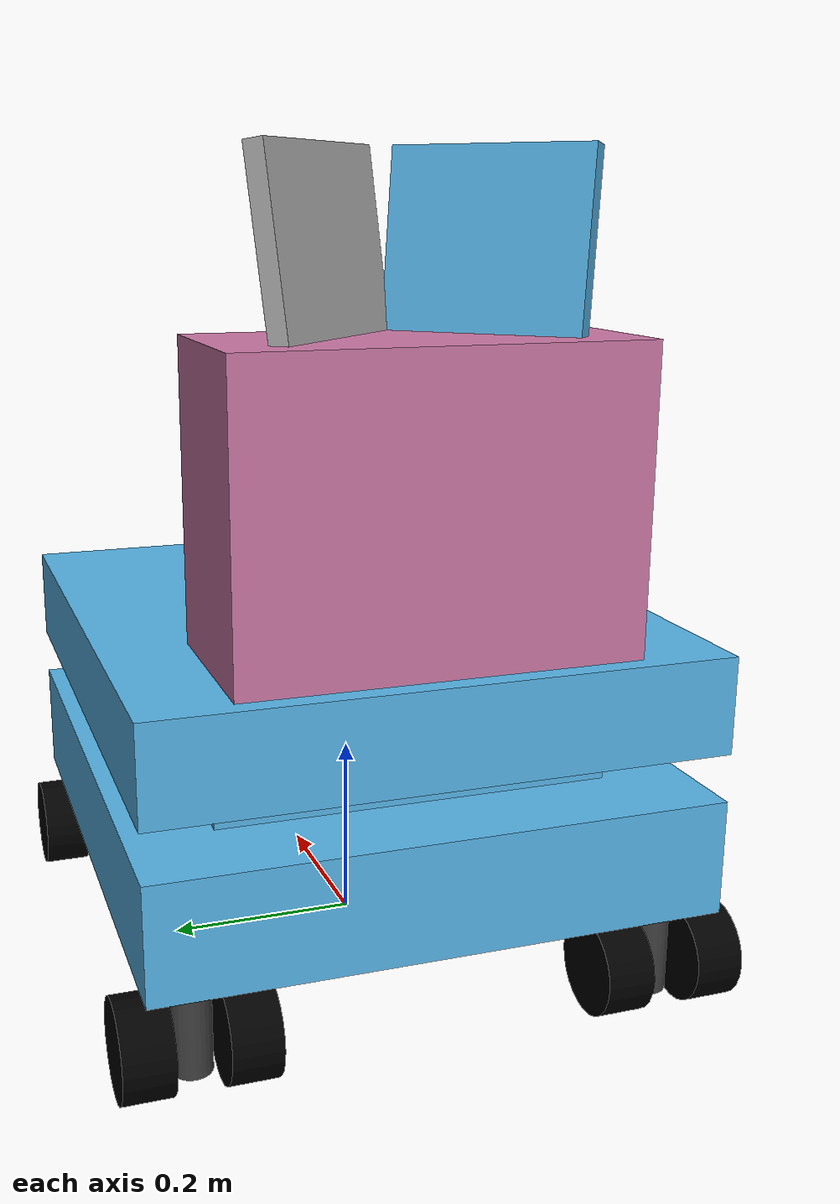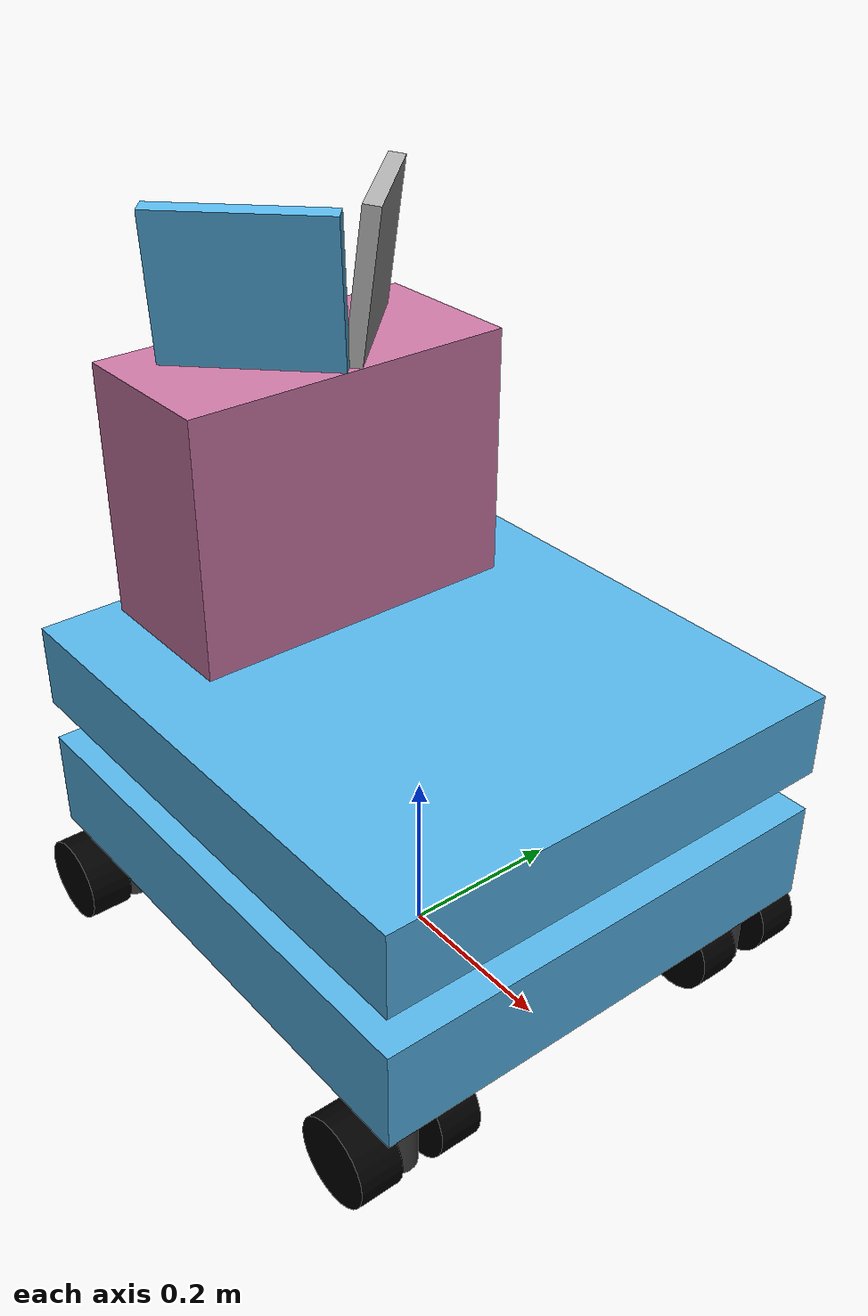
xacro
<?xml version='1.0'?>
<robot xmlns:xacro="http://www.ros.org/wiki/xacro" name="freddy">

  <xacro:arg name="use_gpu_2d_laser" default="false" />

  <!-- Robot tf_prefix -->
  <xacro:arg name="tf_prefix" default="" />

  <xacro:include filename="$(find freddy_base_description)/urdf/common.xacro" />
  <xacro:include filename="$(find freddy_base_description)/urdf/freddy_base_gz.urdf.xacro" />
  <xacro:include filename="$(find freddy_torso_description)/urdf/freddy_torso_gz.urdf.xacro" />

  <link name="base_link"/>

  <xacro:freddy_base name="freddy_base" parent="base_link"
    use_gpu_2d_laser="$(arg use_gpu_2d_laser)">
    <origin xyz="0.0 0.0 0.0" rpy="0.0 0.0 0.0" />
  </xacro:freddy_base>

  <xacro:freddy_torso name="freddy_torso" parent="base_link">
    <origin xyz="0.0 0.0 0.0" rpy="0.0 0.0 0.0" />
  </xacro:freddy_torso>

  <gazebo>
    <!-- VELOCITY CONTROL PLUGIN -->
    <plugin
      filename="gz-sim-velocity-control-system"
      name="gz::sim::systems::VelocityControl">
      <initial_linear>0.0 0 0</initial_linear>
      <initial_angular>0 0 0.0</initial_angular>
    </plugin>
    <!-- Joint state publisher -->
    <plugin filename="gz_ros2_control-system" name="gz_ros2_control::GazeboSimROS2ControlPlugin">
      <parameters>$(find freddy_description)/config/ros2_controllers_double_wheel.yaml</parameters>
    </plugin>
  </gazebo>

</robot>

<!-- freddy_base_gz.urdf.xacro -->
<robot xmlns:xacro="http://www.ros.org/wiki/xacro">

    <!-- simplified box collision geometry for base -->
    <xacro:property name="robot_name" value="freddy"/>

    <xacro:property name="base_size_x" value="0.635"/>
    <xacro:property name="base_size_y" value="0.582"/>
    <xacro:property name="base_size_z_bottom" value="0.12"/>
    <xacro:property name="wheel_slit_height" value="0.1"/>
    <xacro:property name="laser_slit_height" value="0.05"/>
    <xacro:property name="base_size_z_top" value="0.1"/>
    <xacro:property name="base_size_z" value="${base_size_z_bottom + laser_slit_height + base_size_z_top}"/>
    <xacro:property name="base_mass" value="40.0"/>

    <xacro:include filename="$(find freddy_base_description)/urdf/kelo_wheel_gz.urdf.xacro" />

    <xacro:macro name="freddy_base" params="name parent *origin use_gpu_2d_laser:=true">

        <!-- BASE -->
        <link name="${name}_link">
            <visual>
                <origin xyz="0 0 ${wheel_slit_height + base_size_z_bottom/2}" rpy="0 0 0"/>
                <geometry>
                    <box size="${base_size_x} ${base_size_y} ${base_size_z_bottom}" />
                </geometry>
            </visual>
            <visual>
                <origin xyz="0 0 ${wheel_slit_height + base_size_z_bottom + laser_slit_height/2}" rpy="0 0 0"/>
                <geometry>
                    <box size="${base_size_x*0.7} ${base_size_y*0.7} ${laser_slit_height}" />
                </geometry>
            </visual>
            <visual>
                <origin xyz="0 0 ${wheel_slit_height + base_size_z_bottom + laser_slit_height + base_size_z_top/2}" rpy="0 0 0"/>
                <geometry>
                    <box size="${base_size_x} ${base_size_y} ${base_size_z_top}" />
                </geometry>
            </visual>

            <!-- base bottom collisions -->
            <collision>
                <origin xyz="0 0 ${wheel_slit_height + base_size_z_bottom/2}" rpy="0 0 0.0"/>
                <geometry>
                    <box size="${base_size_x} ${base_size_y} ${base_size_z_bottom}" />
                </geometry>
            </collision>

            <!-- base top collisions -->
            <collision>
                <origin xyz="0 0 ${wheel_slit_height + base_size_z_bottom + laser_slit_height + base_size_z_top/2}" rpy="0 0 0.0"/>
                <geometry>
                    <box size="${base_size_x} ${base_size_y} ${base_size_z_top}" />
                </geometry>
            </collision>

                                 <!-- breadth="${base_size_y}" height="${base_size_z}"-->
        </link>

        <joint name="${name}_joint" type="fixed">
            <xacro:insert_block name="origin" />
            <parent link="${parent}"/>
            <child link="${name}_link" />
        </joint>

        <!-- WHEELS -->
        <xacro:kelo_drive name="kelo_drive_front_left" parent="${name}_link" >
            <origin xyz="${base_size_x*0.5 - wheel_radius}
                         ${base_size_y*0.5 - wheel_radius}
                         ${wheel_radius}"
                    rpy="0 0 0"/>
        </xacro:kelo_drive>
        <xacro:kelo_drive name="kelo_drive_front_right" parent="${name}_link" >
            <origin xyz="${base_size_x*0.5 - wheel_radius}
                         ${-(base_size_y*0.5 - wheel_radius)}
                         ${wheel_radius}"
                    rpy="0 0 0"/>
        </xacro:kelo_drive>
        <xacro:kelo_drive name="kelo_drive_rear_right" parent="${name}_link" >
            <origin xyz="${-(base_size_x*0.5 - wheel_radius)}
                         ${base_size_y*0.5 - wheel_radius}
                         ${wheel_radius}"
                    rpy="0 0 0"/>
        </xacro:kelo_drive>
        <xacro:kelo_drive name="kelo_drive_rear_left" parent="${name}_link" >
            <origin xyz="${-(base_size_x*0.5 - wheel_radius)}
                         ${-(base_size_y*0.5 - wheel_radius)}
                         ${wheel_radius}"
                    rpy="0 0 0"/>
        </xacro:kelo_drive>

    </xacro:macro>
</robot>

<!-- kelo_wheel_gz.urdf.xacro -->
<robot xmlns:xacro="http://www.ros.org/wiki/xacro">

  <!-- Property definitions -->
  <xacro:property name="wheel_radius" value="0.05"/>
  <xacro:property name="wheel_length" value="0.05"/>
  <xacro:property name="wheel_separation" value="0.05"/>
  <xacro:property name="wheel_mass" value="1.0"/>
  <xacro:property name="wheel_inertia" value="0.001"/>
  <xacro:property name="joint_friction" value="0.2"/>
  <xacro:property name="joint_damping" value="0.2"/>

  <xacro:property name="pivot_height" value="0.1"/>
  <xacro:property name="pivot_radius" value="0.02"/>
  <xacro:property name="pivot_offset" value="0.01"/>

  <!-- Pivot macro -->
  <xacro:macro name="pivot" params="name">
    <link name="${name}">
      <visual>
      <origin xyz="0 0 0" rpy="0 0 0"/>
        <geometry>
          <cylinder length="${pivot_height}" radius="${pivot_radius}"/>
        </geometry>
        <material name="grey">
          <color rgba="0.25 0.25 0.25 1"/>
        </material>
      </visual>
      <collision>
      <origin xyz="0 0 0" rpy="0 0 0"/>
        <geometry>
          <cylinder length="${pivot_height}" radius="${pivot_radius}"/>
        </geometry>
      </collision>
      <inertial>
        <mass value="${wheel_mass}"/>
        <origin xyz="0 0 0" rpy="0 0 0"/>
        <inertia ixx="${wheel_inertia}" ixy="0" ixz="0" iyy="${wheel_inertia}" iyz="0" izz="${wheel_inertia}"/>
      </inertial>
    </link>
  </xacro:macro>

  <!-- Wheel macro -->
  <xacro:macro name="wheel" params="name">
    <link name="${name}">
      <visual>
      <origin xyz="0 0 0" rpy="0 0 0"/>
        <geometry>
          <cylinder length="${wheel_length}" radius="${wheel_radius}"/>
        </geometry>
        <material name="black">
          <color rgba="0 0 0 1"/>
        </material>
      </visual>
      <collision>
      <origin xyz="0 0 0" rpy="0 0 0"/>
        <geometry>
          <cylinder length="${wheel_length}" radius="${wheel_radius}"/>
        </geometry>
      </collision>
      <inertial>
        <mass value="${wheel_mass}"/>
        <origin xyz="0 0 0" rpy="0 0 0"/>
        <inertia ixx="${wheel_inertia}" ixy="0" ixz="0" iyy="${wheel_inertia}" iyz="0" izz="${wheel_inertia}"/>
      </inertial>
    </link>
  </xacro:macro>

  <!-- Kelo drive macro -->
  <xacro:macro name="kelo_drive" params="name parent *origin">

    <xacro:pivot name="${name}_pivot"/>
    <xacro:wheel name="${name}_hub_left"/>
    <xacro:wheel name="${name}_hub_right"/>

    <!-- Joint between pivot and chassis -->
    <joint name="${name}_pivot_joint" type="continuous">
      <parent link="${parent}"/>
      <child link="${name}_pivot"/>
      <xacro:insert_block name="origin" />
      <axis xyz="0 0 1"/>
      <dynamics damping="${joint_damping}" friction="${joint_friction}"/>
    </joint>

    <!-- Joint between left wheel hub and pivot -->
    <joint name="${name}_hub_left_joint" type="continuous">
      <parent link="${name}_pivot"/>
      <child link="${name}_hub_left"/>
      <origin xyz="-${pivot_offset} ${wheel_separation} -${base_size_z_bottom*0.5 - wheel_radius}" rpy="-1.5708 0 0"/>
      <axis xyz="0 0 1"/>
      <dynamics damping="${joint_damping}" friction="${joint_friction}"/>
    </joint>

    <!-- Joint between right wheel hub and pivot -->
    <joint name="${name}_hub_right_joint" type="continuous">
      <parent link="${name}_pivot"/>
      <child link="${name}_hub_right"/>
      <origin xyz="-${pivot_offset} -${wheel_separation} -${base_size_z_bottom*0.5 - wheel_radius}" rpy="-1.5708 0 0"/>
      <axis xyz="0 0 1"/>
      <dynamics damping="${joint_damping}" friction="${joint_friction}"/>
    </joint>

    <!-- ros2 control tags -->
    <ros2_control name="${name}" type="system">
      <hardware>
        <plugin>gz_ros2_control/GazeboSimSystem</plugin>
      </hardware>
      <joint name="${name}_hub_left_joint">
        <command_interface name="position">
          <param name="min">-1e+100</param>
          <param name="max">1e+100</param>
        </command_interface>
        <command_interface name="velocity">
          <param name="min">-1e+100</param>
          <param name="max">1e+100</param>
        </command_interface>
        <command_interface name="effort">
          <param name="min">-1e+100</param>
          <param name="max">1e+100</param>
        </command_interface>
        <state_interface name="position">
           <param name="initial_value">0.0</param>
        </state_interface>
        <state_interface name="velocity"/>
        <state_interface name="effort"/>
      </joint>
      <transmission name="${name}_hub_left_joint_transmission">
        <plugin>transmission_interface/SimpleTansmission</plugin>
        <param name="joint_to_actuator">1</param>
      </transmission>
      <joint name="${name}_hub_right_joint">
        <command_interface name="position">
          <param name="min">-1e+100</param>
          <param name="max">1e+100</param>
        </command_interface>
        <command_interface name="velocity">
          <param name="min">-1e+100</param>
          <param name="max">1e+100</param>
        </command_interface>
        <command_interface name="effort">
          <param name="min">-1e+100</param>
          <param name="max">1e+100</param>
        </command_interface>
        <state_interface name="position">
           <param name="initial_value">0.0</param>
        </state_interface>
        <state_interface name="velocity"/>
        <state_interface name="effort"/>
      </joint>
      <transmission name="${name}_hub_right_joint_transmission">
        <plugin>transmission_interface/SimpleTansmission</plugin>
        <param name="joint_to_actuator">1</param>
      </transmission>
    </ros2_control>

  </xacro:macro>

</robot>

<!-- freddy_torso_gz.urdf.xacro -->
<robot xmlns:xacro="http://www.ros.org/wiki/xacro">

    <!-- torso parameters -->
    <xacro:property name="torso_height" value="0.3" />
    <xacro:property name="torso_width" value="0.4" />
    <xacro:property name="torso_thickness" value="0.19" />
    <xacro:property name="torso_back_offset" value="0.02" />

    <xacro:property name="torso_shoulder_z_offset" value="0.03" />
    <xacro:property name="torso_shoulder_height" value="0.2" />
    <xacro:property name="torso_shoulder_width" value="0.2" />
    <xacro:property name="torso_shoulder_thickness" value="0.02" />

    <xacro:include filename="$(find freddy_base_description)/urdf/common.xacro" />
    <xacro:include filename="$(find freddy_base_description)/urdf/freddy_base_gz.urdf.xacro" />

    <xacro:macro name="freddy_torso" params="name parent *origin use_gpu_2d_laser:=true">
        <!-- TORSO -->
        <joint name="${name}_joint" type="fixed">
            <origin
                xyz="${-base_size_x/2 + torso_back_offset + torso_thickness/2} 0 ${wheel_slit_height + base_size_z}"
                rpy="0 0 0" />
            <parent link="${parent}" />
            <child link="${name}_link" />
        </joint>

        <link name="${name}_link">
            <visual>
                <origin
                    xyz="0 0 ${torso_height/2}"
                    rpy="0 0 0" />
                <geometry>
                    <box size="${torso_thickness} ${torso_width} ${torso_height}" />
                </geometry>
            </visual>

            <!-- torso collision -->
            <collision>
                <origin
                    xyz="0 0 ${torso_height/2}"
                    rpy="0 0 0" />
                <geometry>
                    <box size="${torso_thickness} ${torso_width} ${torso_height}" />
                </geometry>
            </collision>

            <xacro:cuboid_inertia mass="${base_mass/10000}" length="${base_size_x}"
                breadth="${base_size_y}" height="${base_size_z}" />
        </link>

        <!-- TORSO SHOULDER LEFT -->
        <joint name="${name}_shoulder_left_joint" type="fixed">
            <origin
                xyz="${torso_thickness/2 - torso_shoulder_thickness/2} 0 ${torso_height - torso_shoulder_z_offset}"
                rpy="0. 0.1309 0.7853982" />
            <parent link="${name}_link" />
            <child link="${name}_shoulder_left_link" />
        </joint>

        <link name="${name}_shoulder_left_link">
            <visual>
                <origin
                    xyz="0 ${torso_shoulder_width/2} ${torso_shoulder_height/2}"
                    rpy="0 0 0" />
                <geometry>
                    <box
                        size="${torso_shoulder_thickness} ${torso_shoulder_width} ${torso_shoulder_height}" />
                </geometry>
            </visual>

            <!-- torso shoulder collision -->
            <collision>
                <origin
                    xyz="0 ${torso_shoulder_width/2} ${torso_shoulder_height/2}"
                    rpy="0 0 0" />
                <geometry>
                    <box
                        size="${torso_shoulder_thickness} ${torso_shoulder_width} ${torso_shoulder_height}" />
                </geometry>
            </collision>

            <xacro:cuboid_inertia mass="${base_mass}" length="${base_size_x}"
                breadth="${base_size_y}" height="${base_size_z}" />
        </link>

        <joint name="${name}_shoulder_left_arm_joint" type="fixed">
            <origin
                xyz="0 ${torso_shoulder_width/2} ${torso_shoulder_height/2}"
                rpy="3.14159 -1.5708 0" />
            <parent link="${name}_shoulder_left_link" />
            <child link="${name}_shoulder_left_arm_attach_link" />
        </joint>

        <link name="${name}_shoulder_left_arm_attach_link" />

        <!-- TORSO SHOULDER RIGHT -->
        <joint name="${name}_shoulder_right_joint" type="fixed">
            <origin
                xyz="${torso_thickness/2 - torso_shoulder_thickness/2} 0 ${torso_height - torso_shoulder_z_offset}"
                rpy="0 0.1309 -0.7853982" />
            <parent link="${name}_link" />
            <child link="${name}_shoulder_right_link" />
        </joint>

        <link name="${name}_shoulder_right_link">
            <visual>
                <origin
                    xyz="0 ${-torso_shoulder_width/2} ${torso_shoulder_height/2}"
                    rpy="0 0 0" />
                <geometry>
                    <box
                        size="${torso_shoulder_thickness} ${torso_shoulder_width} ${torso_shoulder_height}" />
                </geometry>
            </visual>

            <!-- torso shoulder collision -->
            <collision>
                <origin
                    xyz="0 ${-torso_shoulder_width/2} ${torso_shoulder_height/2}"
                    rpy="0 0 0" />
                <geometry>
                    <box
                        size="${torso_shoulder_thickness} ${torso_shoulder_width} ${torso_shoulder_height}" />
                </geometry>
            </collision>

            <!-- This is causing the base to topple over under combined x y velocity -->
            <xacro:cuboid_inertia mass="${base_mass}" length="${base_size_x}"
                breadth="${base_size_y}" height="${base_size_z}" />
        </link>

        <joint name="${name}_shoulder_right_arm_joint" type="fixed">
            <origin
                xyz="0 ${-torso_shoulder_width/2} ${torso_shoulder_height/2}"
                rpy="3.14159 -1.5708 0" />
            <parent link="${name}_shoulder_right_link" />
            <child link="${name}_shoulder_right_arm_attach_link" />
        </joint>

         <link name="${name}_shoulder_right_arm_attach_link" />

    </xacro:macro>
</robot>
